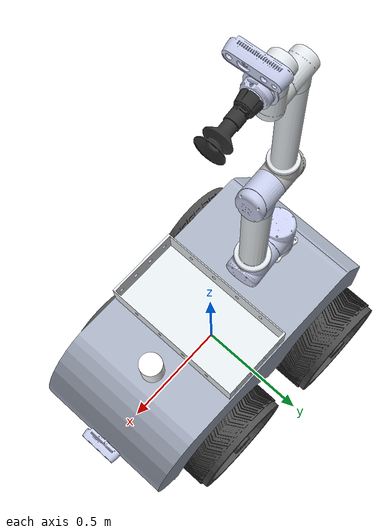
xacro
<?xml version="1.0"?>
<robot
  name="agrobot" xmlns:xacro="http://ros.org/wiki/xacro">
  <!--add
  colors to robot to visualize in gazebo-->
  <xacro:macro name="base_link">
    <visual>
      <material>
        <ambient>1 0 0 1</ambient>
        <diffuse>1 0 0 1</diffuse>
        <specular>0.1 0.1 0.1 1</specular>
        <emissive>0 0 0 0</emissive>
      </material>
    </visual>
  </xacro:macro>
  <xacro:macro name="left_rear_wheel_link">
    <visual>
      <material>
        <ambient>0.5 0.5 0.5 1</ambient>
        <diffuse>0.5 0.5 0.5 1</diffuse>
        <specular>0.1 0.1 0.1 1</specular>
        <emissive>0 0 0 0</emissive>
      </material>
    </visual>
  </xacro:macro>
  <xacro:macro name="right_rear_wheel_link">
    <visual>
      <material>
        <ambient>0.5 0.5 0.5 1</ambient>
        <diffuse>0.5 0.5 0.5 1</diffuse>
        <specular>0.1 0.1 0.1 1</specular>
        <emissive>0 0 0 0</emissive>
      </material>
    </visual>
  </xacro:macro>
  <xacro:macro name="right_front_wheel_link">
    <visual>
      <material>
        <ambient>0.5 0.5 0.5 1</ambient>
        <diffuse>0.5 0.5 0.5 1</diffuse>
        <specular>0.1 0.1 0.1 1</specular>
        <emissive>0 0 0 0</emissive>
      </material>
    </visual>
  </xacro:macro>
  <xacro:macro name="left_front_wheel_link">
    <visual>
      <material>
        <ambient>0.5 0.5 0.5 1</ambient>
        <diffuse>0.5 0.5 0.5 1</diffuse>
        <specular>0.1 0.1 0.1 1</specular>
        <emissive>0 0 0 0</emissive>
      </material>
    </visual>
  </xacro:macro>
  <xacro:macro name="gripper">
    <visual>
      <material>
        <ambient>0 0 0 1</ambient>
        <diffuse>0 0 0 1</diffuse>
        <specular>0.1 0.1 0.1 1</specular>
        <emissive>0 0 0 0</emissive>
      </material>
    </visual>
  </xacro:macro>

  <!-- # Add this before base link -->
  <link name="dummy_link"></link>

  <!-- # Add this after base link -->
  <joint name="dummy_joint" type="fixed">
    <origin rpy="0 0 0" xyz="0 0 0" />
    <parent link="dummy_link" />
    <child link="base_link" />
  </joint>
  <!-- dummy link ends -->

  <link
    name="base_link">
    <inertial>
      <origin
        xyz="0.338619187290064 -0.000162910163891747 0.234771206125617"
        rpy="0 0 0" />
      <mass
        value="90.0457257239936" />
      <inertia
        ixx="4.89388987338462"
        ixy="-0.00136474115893025"
        ixz="-1.05008258735402"
        iyy="9.8227363970549"
        iyz="-0.00408270410883873"
        izz="11.1213786049405" />
    </inertial>
    <visual>
      <origin
        xyz="0 0 0"
        rpy="0 0 0" />
      <geometry>
        <mesh
          filename="package://agrobot/meshes/base_link.STL" />
      </geometry>
      <material
        name="">
        <color
          rgba="0.666666666666667 0.698039215686274 0.768627450980392 1" />
      </material>
    </visual>
    <collision>
      <origin
        xyz="0 0 0"
        rpy="0 0 0" />
      <geometry>
        <mesh
          filename="package://agrobot/meshes/base_link.STL" />
      </geometry>
    </collision>
  </link>
  <link
    name="left_rear_wheel_link">
    <inertial>
      <origin
        xyz="-6.88524348646524E-10 -0.0971549519873335 1.125871895713E-09"
        rpy="0 0 0" />
      <mass
        value="35.6042214737412" />
      <inertia
        ixx="0.708004621980203"
        ixy="1.07770064052363E-09"
        ixz="6.70022802098861E-11"
        iyy="1.27149421818034"
        iyz="-1.75179561332183E-09"
        izz="0.708004621897381" />
    </inertial>
    <visual>
      <origin
        xyz="0 0 0"
        rpy="0 0 0" />
      <geometry>
        <mesh
          filename="package://agrobot/meshes/left_rear_wheel_link.STL" />
      </geometry>
      <material
        name="">
        <color
          rgba="0.298039215686275 0.298039215686275 0.298039215686275 1" />
      </material>
    </visual>
    <collision>
      <origin
        xyz="0 0 0"
        rpy="0 0 0" />
      <geometry>
        <mesh
          filename="package://agrobot/meshes/left_rear_wheel_link.STL" />
      </geometry>
    </collision>
  </link>
  <joint
    name="left_rear_wheel_joint"
    type="continuous">
    <origin
      xyz="-0.377856904248594 0.472821 -0.1457325"
      rpy="0 0 0" />
    <parent
      link="base_link" />
    <child
      link="left_rear_wheel_link" />
    <axis
      xyz="0 1 0" />
    <limit
      effort="1"
      velocity="1" />
  </joint>
  <link
    name="right_rear_wheel_link">
    <inertial>
      <origin
        xyz="7.70649155601433E-10 0.0971550480126593 -1.07134373594775E-09"
        rpy="0 0 0" />
      <mass
        value="35.6042214737478" />
      <inertia
        ixx="0.708004621982386"
        ixy="-1.20553451036157E-09"
        ixz="7.2294183370238E-11"
        iyy="1.27149421820327"
        iyz="1.66639214273336E-09"
        izz="0.7080046219204" />
    </inertial>
    <visual>
      <origin
        xyz="0 0 0"
        rpy="0 0 0" />
      <geometry>
        <mesh
          filename="package://agrobot/meshes/right_rear_wheel_link.STL" />
      </geometry>
      <material
        name="">
        <color
          rgba="0.298039215686275 0.298039215686275 0.298039215686275 1" />
      </material>
    </visual>
    <collision>
      <origin
        xyz="0 0 0"
        rpy="0 0 0" />
      <geometry>
        <mesh
          filename="package://agrobot/meshes/right_rear_wheel_link.STL" />
      </geometry>
    </collision>
  </link>
  <joint
    name="right_rear_wheel_joint"
    type="continuous">
    <origin
      xyz="-0.377856904248594 -0.472820999999999 -0.1457325"
      rpy="0 0 0" />
    <parent
      link="base_link" />
    <child
      link="right_rear_wheel_link" />
    <axis
      xyz="0 -1 0" />
    <limit
      effort="1"
      velocity="1" />
  </joint>
  <link
    name="right_steer_link">
    <inertial>
      <origin
        xyz="0.00106983010521355 -0.058216575717977 0.0586919568981064"
        rpy="0 0 0" />
      <mass
        value="2.02221873415406" />
      <inertia
        ixx="0.0237510071456577"
        ixy="0.000349321803548295"
        ixz="8.49347969022073E-05"
        iyy="0.00474702693466583"
        iyz="-0.00462206016825545"
        izz="0.0198029274091733" />
    </inertial>
    <visual>
      <origin
        xyz="0 0 0"
        rpy="0 0 0" />
      <geometry>
        <mesh
          filename="package://agrobot/meshes/right_steer_link.STL" />
      </geometry>
      <material
        name="">
        <color
          rgba="0.898039215686275 0.917647058823529 0.929411764705882 1" />
      </material>
    </visual>
    <collision>
      <origin
        xyz="0 0 0"
        rpy="0 0 0" />
      <geometry>
        <mesh
          filename="package://agrobot/meshes/right_steer_link.STL" />
      </geometry>
    </collision>
  </link>
  <joint
    name="right_steer_joint"
    type="revolute">
    <origin
      xyz="0.269843095751407 -0.113347500000001 -0.165163500000007"
      rpy="0 0 0" />
    <parent
      link="base_link" />
    <child
      link="right_steer_link" />
    <axis
      xyz="0 0 1" />
    <limit
      lower="-0.5"
      upper="0.5"
      effort="1"
      velocity="1" />
  </joint>
  <link
    name="right_front_wheel_link">
    <inertial>
      <origin
        xyz="-0.00178494838394699 0.0971386499534298 -1.03492078795675E-09"
        rpy="0 0 0" />
      <mass
        value="35.6042214682187" />
      <inertia
        ixx="0.70819481994374"
        ixy="-0.0103507693932998"
        ixz="-1.14535353385098E-10"
        iyy="1.27130402010412"
        iyz="1.61921169599121E-09"
        izz="0.70800462188146" />
    </inertial>
    <visual>
      <origin
        xyz="0 0 0"
        rpy="0 0 0" />
      <geometry>
        <mesh
          filename="package://agrobot/meshes/right_front_wheel_link.STL" />
      </geometry>
      <material
        name="">
        <color
          rgba="0.298039215686275 0.298039215686275 0.298039215686275 1" />
      </material>
    </visual>
    <collision>
      <origin
        xyz="0 0 0"
        rpy="0 0 0" />
      <geometry>
        <mesh
          filename="package://agrobot/meshes/right_front_wheel_link.STL" />
      </geometry>
    </collision>
  </link>
  <joint
    name="right_front_wheel_joint"
    type="continuous">
    <origin
      xyz="0.00600932049673797 -0.327033293258374 0.0194310000000003"
      rpy="0 0 0" />
    <parent
      link="right_steer_link" />
    <child
      link="right_front_wheel_link" />
    <axis
      xyz="0.0183721546209595 -0.999831217723563 0" />
    <limit
      effort="1"
      velocity="1" />
  </joint>
  <link
    name="left_steer_link">
    <inertial>
      <origin
        xyz="-7.93909673002524E-08 0.0582264056008295 0.0586919564086109"
        rpy="0 0 0" />
      <mass
        value="2.0222188316113" />
      <inertia
        ixx="0.0237574260903284"
        ixy="9.05664891630045E-10"
        ixz="-2.90916636093196E-09"
        iyy="0.0047406081835411"
        iyz="0.00462284049826763"
        izz="0.0198029275829883" />
    </inertial>
    <visual>
      <origin
        xyz="0 0 0"
        rpy="0 0 0" />
      <geometry>
        <mesh
          filename="package://agrobot/meshes/left_steer_link.STL" />
      </geometry>
      <material
        name="">
        <color
          rgba="0.898039215686275 0.917647058823529 0.929411764705882 1" />
      </material>
    </visual>
    <collision>
      <origin
        xyz="0 0 0"
        rpy="0 0 0" />
      <geometry>
        <mesh
          filename="package://agrobot/meshes/left_steer_link.STL" />
      </geometry>
    </collision>
  </link>
  <joint
    name="left_steer_joint"
    type="revolute">
    <origin
      xyz="0.269843095751406 0.1133475 -0.1651635"
      rpy="0 0 0" />
    <parent
      link="base_link" />
    <child
      link="left_steer_link" />
    <axis
      xyz="0 0 -1" />
    <limit
      lower="-0.5"
      upper="0.5"
      effort="1"
      velocity="1" />
  </joint>
  <link
    name="left_front_wheel_link">
    <inertial>
      <origin
        xyz="-9.18307208053193E-10 -0.0971549519880449 9.47844053245106E-10"
        rpy="0 0 0" />
      <mass
        value="35.6042214743438" />
      <inertia
        ixx="0.70800462196026"
        ixy="1.43513145970104E-09"
        ixz="7.81085571079474E-11"
        iyy="1.27149421820327"
        iyz="-1.47327217429804E-09"
        izz="0.708004621942521" />
    </inertial>
    <visual>
      <origin
        xyz="0 0 0"
        rpy="0 0 0" />
      <geometry>
        <mesh
          filename="package://agrobot/meshes/left_front_wheel_link.STL" />
      </geometry>
      <material
        name="">
        <color
          rgba="0.298039215686275 0.298039215686275 0.298039215686275 1" />
      </material>
    </visual>
    <collision>
      <origin
        xyz="0 0 0"
        rpy="0 0 0" />
      <geometry>
        <mesh
          filename="package://agrobot/meshes/left_front_wheel_link.STL" />
      </geometry>
    </collision>
  </link>
  <joint
    name="left_front_wheel_joint"
    type="continuous">
    <origin
      xyz="0 0.3270885 0.0194310000000001"
      rpy="0 0 0" />
    <parent
      link="left_steer_link" />
    <child
      link="left_front_wheel_link" />
    <axis
      xyz="0 1 0" />
    <limit
      effort="1"
      velocity="1" />
  </joint>
  <link
    name="lidar_link">
    <inertial>
      <origin
        xyz="-5.55111512312578E-17 0 -5.55111512312578E-17"
        rpy="0 0 0" />
      <mass
        value="0.87856337260668" />
      <inertia
        ixx="0.00145328733893972"
        ixy="3.061917552346E-36"
        ixz="5.14974347887166E-20"
        iyy="0.00145328733893972"
        iyz="-2.34952547281483E-36"
        izz="0.0010776550138266" />
    </inertial>
    <visual>
      <origin
        xyz="0 0 0"
        rpy="0 0 0" />
      <geometry>
        <mesh
          filename="package://agrobot/meshes/lidar_link.STL" />
      </geometry>
      <material
        name="">
        <color
          rgba="1 1 1 1" />
      </material>
    </visual>
    <collision>
      <origin
        xyz="0 0 0"
        rpy="0 0 0" />
      <geometry>
        <mesh
          filename="package://agrobot/meshes/lidar_link.STL" />
      </geometry>
    </collision>
  </link>
  <joint
    name="lidar_joint"
    type="fixed">
    <origin
      xyz="0.3556 0.00635000000000025 0.476885"
      rpy="0 0 0" />
    <parent
      link="base_link" />
    <child
      link="lidar_link" />
    <axis
      xyz="0 0 0" />
  </joint>
  <link
    name="0">
    <inertial>
      <origin
        xyz="7.22391839399344E-06 -0.000475137384474633 0.00243497864398173"
        rpy="0 0 0" />
      <mass
        value="1.91435201606526" />
      <inertia
        ixx="0.00312084570629236"
        ixy="1.03835097418113E-07"
        ixz="2.20016415047805E-07"
        iyy="0.00309492725703448"
        iyz="5.55031448921244E-07"
        izz="0.00574920281992534" />
    </inertial>
    <visual>
      <origin
        xyz="0 0 0"
        rpy="0 0 0" />
      <geometry>
        <mesh
          filename="package://agrobot/meshes/0.STL" />
      </geometry>
      <material
        name="">
        <color
          rgba="0.898039215686275 0.917647058823529 0.929411764705882 1" />
      </material>
    </visual>
    <collision>
      <origin
        xyz="0 0 0"
        rpy="0 0 0" />
      <geometry>
        <mesh
          filename="package://agrobot/meshes/0.STL" />
      </geometry>
    </collision>
  </link>
  <joint
    name="base_0_joint"
    type="fixed">
    <origin
      xyz="-0.400240654248588 0.00634999999999925 0.437005"
      rpy="0 0 -1.5707963267949" />
    <parent
      link="base_link" />
    <child
      link="0" />
    <axis
      xyz="0 0 0" />
  </joint>
  <link
    name="1">
    <inertial>
      <origin
        xyz="0.000999697019135302 0.0685590146345417 0.0115695327417828"
        rpy="0 0 0" />
      <mass
        value="8.30725771838491" />
      <inertia
        ixx="0.0290070611357098"
        ixy="-0.00024404396574081"
        ixz="-0.000162929495467449"
        iyy="0.0272249526419641"
        iyz="-0.00280761572612354"
        izz="0.0271112300666375" />
    </inertial>
    <visual>
      <origin
        xyz="0 0 0"
        rpy="0 0 0" />
      <geometry>
        <mesh
          filename="package://agrobot/meshes/1.STL" />
      </geometry>
      <material
        name="">
        <color
          rgba="0.792156862745098 0.819607843137255 0.933333333333333 1" />
      </material>
    </visual>
    <collision>
      <origin
        xyz="0 0 0"
        rpy="0 0 0" />
      <geometry>
        <mesh
          filename="package://agrobot/meshes/1.STL" />
      </geometry>
    </collision>
  </link>
  <joint
    name="0_1_joint"
    type="revolute">
    <origin
      xyz="0 0 0.032"
      rpy="1.5707963267949 0 -3.14159265358979" />
    <parent
      link="0" />
    <child
      link="1" />
    <axis
      xyz="0 1 0" />
    <limit
      lower="-3.14"
      upper="3.14"
      effort="0"
      velocity="0" />
  </joint>
  <link
    name="2">
    <inertial>
      <origin
        xyz="0.00595545411585895 0.0116126506445609 0.0682998582790035"
        rpy="0 0 0" />
      <mass
        value="8.30725987080827" />
      <inertia
        ixx="0.0290073727643984"
        ixy="-0.000247850514976997"
        ixz="-0.000155662685748835"
        iyy="0.0270973353687768"
        iyz="-0.0028072856850568"
        izz="0.0272385496576121" />
    </inertial>
    <visual>
      <origin
        xyz="0 0 0"
        rpy="0 0 0" />
      <geometry>
        <mesh
          filename="package://agrobot/meshes/2.STL" />
      </geometry>
      <material
        name="">
        <color
          rgba="0.792156862745098 0.819607843137255 0.933333333333333 1" />
      </material>
    </visual>
    <collision>
      <origin
        xyz="0 0 0"
        rpy="0 0 0" />
      <geometry>
        <mesh
          filename="package://agrobot/meshes/2.STL" />
      </geometry>
    </collision>
  </link>
  <joint
    name="1_2_joint"
    type="revolute">
    <origin
      xyz="0.00832831562652692 0.0800000000000003 0.0956380633368556"
      rpy="0 0 0" />
    <parent
      link="1" />
    <child
      link="2" />
    <axis
      xyz="0.0867532877763207 0 0.996229826425609" />
    <limit
      lower="-1.65"
      upper="1.65"
      effort="0"
      velocity="0" />
  </joint>
  <link
    name="3">
    <inertial>
      <origin
        xyz="-1.04083408558608E-17 -0.00416892922889589 1.81521464526213E-14"
        rpy="0 0 0" />
      <mass
        value="11.5994106381345" />
      <inertia
        ixx="0.221390635324574"
        ixy="-2.39691037070085E-16"
        ixz="7.42441146677217E-20"
        iyy="0.0175271612190965"
        iyz="4.69546109641302E-16"
        izz="0.221390635324574" />
    </inertial>
    <visual>
      <origin
        xyz="0 0 0"
        rpy="0 0 0" />
      <geometry>
        <mesh
          filename="package://agrobot/meshes/3.STL" />
      </geometry>
      <material
        name="">
        <color
          rgba="0.894117647058823 0.913725490196078 0.929411764705882 1" />
      </material>
    </visual>
    <collision>
      <origin
        xyz="0 0 0"
        rpy="0 0 0" />
      <geometry>
        <mesh
          filename="package://agrobot/meshes/3.STL" />
      </geometry>
    </collision>
  </link>
  <joint
    name="2_3_joint"
    type="fixed">
    <origin
      xyz="0.00694026302210598 0.317100126418792 0.0796983861140481"
      rpy="0 0 0" />
    <parent
      link="2" />
    <child
      link="3" />
    <axis
      xyz="0 0 0" />
  </joint>
  <link
    name="4">
    <inertial>
      <origin
        xyz="0.00292499147896346 -0.00991735299883056 0.0492119262227205"
        rpy="0 0 0" />
      <mass
        value="3.60191554356692" />
      <inertia
        ixx="0.00635835791698763"
        ixy="4.82814461029873E-05"
        ixz="3.97588349686826E-05"
        iyy="0.00594652060922831"
        iyz="0.000779864890495734"
        izz="0.00704691386224002" />
    </inertial>
    <visual>
      <origin
        xyz="0 0 0"
        rpy="0 0 0" />
      <geometry>
        <mesh
          filename="package://agrobot/meshes/4.STL" />
      </geometry>
      <material
        name="">
        <color
          rgba="0.792156862745098 0.819607843137255 0.933333333333333 1" />
      </material>
    </visual>
    <collision>
      <origin
        xyz="0 0 0"
        rpy="0 0 0" />
      <geometry>
        <mesh
          filename="package://agrobot/meshes/4.STL" />
      </geometry>
    </collision>
  </link>
  <joint
    name="3_4_joint"
    type="fixed">
    <origin
      xyz="-0.00349503410519483 0.295799873581208 -0.0595976068026529"
      rpy="0 0 0" />
    <parent
      link="3" />
    <child
      link="4" />
    <axis
      xyz="0 0 0" />
  </joint>
  <link
    name="5">
    <inertial>
      <origin
        xyz="-0.0106102317325918 0.00322927553978399 0.0533717831449155"
        rpy="0 0 0" />
      <mass
        value="1.25836102164551" />
      <inertia
        ixx="0.0021651395517649"
        ixy="1.7580597700485E-05"
        ixz="0.000287682464723543"
        iyy="0.00231988477711238"
        iyz="7.29731063713995E-06"
        izz="0.00248748931679315" />
    </inertial>
    <visual>
      <origin
        xyz="0 0 0"
        rpy="0 0 0" />
      <geometry>
        <mesh
          filename="package://agrobot/meshes/5.STL" />
      </geometry>
      <material
        name="">
        <color
          rgba="0.752941176470588 0.752941176470588 0.752941176470588 1" />
      </material>
    </visual>
    <collision>
      <origin
        xyz="0 0 0"
        rpy="0 0 0" />
      <geometry>
        <mesh
          filename="package://agrobot/meshes/5.STL" />
      </geometry>
    </collision>
  </link>
  <joint
    name="4_5_joint"
    type="revolute">
    <origin
      xyz="-0.000492307428193579 0 -0.00839486644433451"
      rpy="-3.14159265358979 0 -1.57079632679491" />
    <parent
      link="4" />
    <child
      link="5" />
    <axis
      xyz="0 0.0585432848441399 0.998284871066199" />
    <limit
      lower="-2.90"
      upper="2.90"
      effort="0"
      velocity="0" />
  </joint>
  <link
    name="6">
    <inertial>
      <origin
        xyz="0.00280196613202777 -2.68941073776983E-05 1.57717442811345E-06"
        rpy="0 0 0" />
      <mass
        value="7.18112295808518" />
      <inertia
        ixx="0.0068644718242191"
        ixy="0.00117511571246506"
        ixz="-6.89133291248891E-05"
        iyy="0.12928277854405"
        iyz="6.61450704935139E-07"
        izz="0.129294018865426" />
    </inertial>
    <visual>
      <origin
        xyz="0 0 0"
        rpy="0 0 0" />
      <geometry>
        <mesh
          filename="package://agrobot/meshes/6.STL" />
      </geometry>
      <material
        name="">
        <color
          rgba="0.894117647058823 0.913725490196078 0.929411764705882 1" />
      </material>
    </visual>
    <collision>
      <origin
        xyz="0 0 0"
        rpy="0 0 0" />
      <geometry>
        <mesh
          filename="package://agrobot/meshes/6.STL" />
      </geometry>
    </collision>
  </link>
  <joint
    name="5_6_joint"
    type="fixed">
    <origin
      xyz="-0.291837593948312 0.00629617845121455 0.059433336867193"
      rpy="0 0 0" />
    <parent
      link="5" />
    <child
      link="6" />
    <axis
      xyz="0 0 0" />
  </joint>
  <link
    name="7">
    <inertial>
      <origin
        xyz="-0.0464121119843353 0.000203010500011345 0.00966279069116105"
        rpy="0 0 0" />
      <mass
        value="0.728981385244412" />
      <inertia
        ixx="0.000910110083796708"
        ixy="6.94824779264048E-06"
        ixz="0.000119887081631299"
        iyy="0.000986344964828748"
        iyz="-6.12688333886314E-06"
        izz="0.000877608438305994" />
    </inertial>
    <visual>
      <origin
        xyz="0 0 0"
        rpy="0 0 0" />
      <geometry>
        <mesh
          filename="package://agrobot/meshes/7.STL" />
      </geometry>
      <material
        name="">
        <color
          rgba="0.894117647058823 0.913725490196078 0.929411764705882 1" />
      </material>
    </visual>
    <collision>
      <origin
        xyz="0 0 0"
        rpy="0 0 0" />
      <geometry>
        <mesh
          filename="package://agrobot/meshes/7.STL" />
      </geometry>
    </collision>
  </link>
  <joint
    name="6_7_joint"
    type="fixed">
    <origin
      xyz="-0.225738911568433 0.0021667094607711 -0.000127064220658946"
      rpy="3.14159265358979 0 0" />
    <parent
      link="6" />
    <child
      link="7" />
    <axis
      xyz="0 0 0" />
  </joint>
  <link
    name="8">
    <inertial>
      <origin
        xyz="0.00315312409775961 -0.047401181838342 0.00966077510150698"
        rpy="0 0 0" />
      <mass
        value="0.728996819970243" />
      <inertia
        ixx="0.000986248578286713"
        ixy="5.82280818823239E-06"
        ixz="-8.3317825035149E-06"
        iyy="0.000910566401822428"
        iyz="0.000119792176007718"
        izz="0.000877240479552543" />
    </inertial>
    <visual>
      <origin
        xyz="0 0 0"
        rpy="0 0 0" />
      <geometry>
        <mesh
          filename="package://agrobot/meshes/8.STL" />
      </geometry>
      <material
        name="">
        <color
          rgba="0.894117647058823 0.913725490196078 0.929411764705882 1" />
      </material>
    </visual>
    <collision>
      <origin
        xyz="0 0 0"
        rpy="0 0 0" />
      <geometry>
        <mesh
          filename="package://agrobot/meshes/8.STL" />
      </geometry>
    </collision>
  </link>
  <joint
    name="7_8_joint"
    type="revolute">
    <origin
      xyz="-0.0540016060931738 0.00345562761776773 0.060506513291135"
      rpy="-1.5707963267949 0 1.5707963267949" />
    <parent
      link="7" />
    <child
      link="8" />
    <axis
      xyz="-0.0655690232318667 0.997848033826643 -6.76810218960656E-05" />
    <limit
      lower="-3.14"
      upper="3.14"
      effort="0"
      velocity="0" />
  </joint>
  <link
    name="9">
    <inertial>
      <origin
        xyz="0.00124689136429368 0.0466116090791986 0.00958696238668483"
        rpy="0 0 0" />
      <mass
        value="0.728978116270464" />
      <inertia
        ixx="0.000985386694798776"
        ixy="-1.24938780935602E-05"
        ixz="-1.18699355552977E-05"
        iyy="0.000910144612831302"
        iyz="-0.000119429080856919"
        izz="0.000878519013700961" />
    </inertial>
    <visual>
      <origin
        xyz="0 0 0"
        rpy="0 0 0" />
      <geometry>
        <mesh
          filename="package://agrobot/meshes/9.STL" />
      </geometry>
      <material
        name="">
        <color
          rgba="0.894117647058823 0.913725490196078 0.929411764705882 1" />
      </material>
    </visual>
    <collision>
      <origin
        xyz="0 0 0"
        rpy="0 0 0" />
      <geometry>
        <mesh
          filename="package://agrobot/meshes/9.STL" />
      </geometry>
    </collision>
  </link>
  <joint
    name="8_9_joint"
    type="revolute">
    <origin
      xyz="0.00393333875613289 -0.0549496396746462 0.0615028863029619"
      rpy="1.5707963267949 0 0" />
    <parent
      link="8" />
    <child
      link="9" />
    <axis
      xyz="-0.00521812277108888 -0.999986301161722 0.000410711144438554" />
    <limit
      lower="-3.14"
      upper="3.14"
      effort="0"
      velocity="0" />
  </joint>
  <link
    name="10">
    <inertial>
      <origin
        xyz="0.000110377953812441 -0.000861757182314848 -0.013713304265725"
        rpy="0 0 0" />
      <mass
        value="0.430679885908856" />
      <inertia
        ixx="0.000222454433732095"
        ixy="-5.35332309294992E-06"
        ixz="2.29240029064471E-06"
        iyy="0.000234958685531562"
        iyz="1.31785780318959E-06"
        izz="0.000403266492681117" />
    </inertial>
    <visual>
      <origin
        xyz="0 0 0"
        rpy="0 0 0" />
      <geometry>
        <mesh
          filename="package://agrobot/meshes/10.STL" />
      </geometry>
      <material
        name="">
        <color
          rgba="0.792156862745098 0.819607843137255 0.933333333333333 1" />
      </material>
    </visual>
    <collision>
      <origin
        xyz="0 0 0"
        rpy="0 0 0" />
      <geometry>
        <mesh
          filename="package://agrobot/meshes/10.STL" />
      </geometry>
    </collision>
  </link>
  <joint
    name="9_10_joint"
    type="revolute">
    <origin
      xyz="0.00933464283060605 0.0541881605289505 0.0879633457851359"
      rpy="0 0.0872664625997166 0" />
    <parent
      link="9" />
    <child
      link="10" />
    <axis
      xyz="-0.0152507043027664 0.000125460644613228 -0.999883693375333" />
    <limit
      lower="-3.14"
      upper="3.14"
      effort="0"
      velocity="0" />
  </joint>
  <link
    name="gripper">
    <inertial>
      <origin
        xyz="0.0638506339489031 0.00656885271032123 -8.05301245021539E-06"
        rpy="0 0 0" />
      <mass
        value="0.296980282431166" />
      <inertia
        ixx="0.000180646813372541"
        ixy="-7.06233900050708E-05"
        ixz="8.6579990876807E-08"
        iyy="0.000859855480499732"
        iyz="8.90712406615091E-09"
        izz="0.000867121092394948" />
    </inertial>
    <visual>
      <origin
        xyz="0 0 0"
        rpy="0 0 0" />
      <geometry>
        <mesh
          filename="package://agrobot/meshes/gripper.STL" />
      </geometry>
      <material
        name="">
        <color
          rgba="0.2 0.2 0.2 1" />
      </material>
    </visual>
    <collision>
      <origin
        xyz="0 0 0"
        rpy="0 0 0" />
      <geometry>
        <mesh
          filename="package://agrobot/meshes/gripper.STL" />
      </geometry>
    </collision>
  </link>
  <joint
    name="gripper_joint"
    type="continuous">
    <origin
      xyz="5.71901411399595E-05 0 0.00374956385014949"
      rpy="1.57079632679489 -1.48352986419518 3.14159265358979" />
    <parent
      link="10" />
    <child
      link="gripper" />
    <axis
      xyz="0.994749647587966 0.102338276725984 -0.000125460644611053" />
  </joint>
  <link
    name="camera1">
    <inertial>
      <origin
        xyz="0.022177766274157 0.00336995906468324 0.129258567218364"
        rpy="0 0 0" />
      <mass
        value="0.372606994219054" />
      <inertia
        ixx="0.00112021866595854"
        ixy="1.71233564433347E-05"
        ixz="-4.97046817386124E-05"
        iyy="0.000383612391953193"
        iyz="1.61899853344199E-05"
        izz="0.000894061652523148" />
    </inertial>
    <visual>
      <origin
        xyz="0 0 0"
        rpy="0 0 0" />
      <geometry>
        <mesh
          filename="package://agrobot/meshes/camera1.STL" />
      </geometry>
      <material
        name="">
        <color
          rgba="0.792156862745098 0.819607843137255 0.933333333333333 1" />
      </material>
    </visual>
    <collision>
      <origin
        xyz="0 0 0"
        rpy="0 0 0" />
      <geometry>
        <mesh
          filename="package://agrobot/meshes/camera1.STL" />
      </geometry>
    </collision>
  </link>
  <joint
    name="9_to_camera_joint"
    type="fixed">
    <origin
      xyz="0.00596351407325493 0.054192293332445 0.0551952628094936"
      rpy="-1.5707963267949 -1.48352986419518 0" />
    <parent
      link="9" />
    <child
      link="camera1" />
    <axis
      xyz="0.999883693375333 0.0152507043027703 -0.000125460644611053" />
  </joint>
  <link
    name="box">
    <inertial>
      <origin
        xyz="-3.48038049730048E-05 2.54782625984356E-16 0.0202301146412345"
        rpy="0 0 0" />
      <mass
        value="7.72060620410743" />
      <inertia
        ixx="0.374813962548035"
        ixy="5.18084794476217E-17"
        ixz="8.21432606256597E-06"
        iyy="0.108114101901683"
        iyz="-2.25702668194321E-17"
        izz="0.465535662550645" />
    </inertial>
    <visual>
      <origin
        xyz="0 0 0"
        rpy="0 0 0" />
      <geometry>
        <mesh
          filename="package://agrobot/meshes/box.STL" />
      </geometry>
      <material
        name="">
        <color
          rgba="0.898039215686275 0.917647058823529 0.929411764705882 1" />
      </material>
    </visual>
    <collision>
      <origin
        xyz="0 0 0"
        rpy="0 0 0" />
      <geometry>
        <mesh
          filename="package://agrobot/meshes/box.STL" />
      </geometry>
    </collision>
  </link>
  <joint
    name="base_box"
    type="fixed">
    <origin
      xyz="0.0696593457514061 0 0.428625"
      rpy="0 0 0" />
    <parent
      link="base_link" />
    <child
      link="box" />
    <axis
      xyz="0 0 0" />
  </joint>
  <link
    name="back_right_rod">
    <inertial>
      <origin
        xyz="0 -0.154946853706112 0"
        rpy="0 0 0" />
      <mass
        value="0.692343632758655" />
      <inertia
        ixx="0.00551899047474228"
        ixy="-1.91978532357076E-20"
        ixz="-1.31993210345085E-22"
        iyy="9.29561669777746E-05"
        iyz="-4.25454738859189E-20"
        izz="0.00551899047474228" />
    </inertial>
    <visual>
      <origin
        xyz="0 0 0"
        rpy="0 0 0" />
      <geometry>
        <mesh
          filename="package://agrobot/meshes/back_right_rod.STL" />
      </geometry>
      <material
        name="">
        <color
          rgba="0.898039215686275 0.917647058823529 0.929411764705882 1" />
      </material>
    </visual>
    <collision>
      <origin
        xyz="0 0 0"
        rpy="0 0 0" />
      <geometry>
        <mesh
          filename="package://agrobot/meshes/back_right_rod.STL" />
      </geometry>
    </collision>
  </link>
  <joint
    name="base_right_rod"
    type="fixed">
    <origin
      xyz="-0.377856904248594 0.472821 -0.1457325"
      rpy="0 0 0" />
    <parent
      link="base_link" />
    <child
      link="back_right_rod" />
    <axis
      xyz="0 0 0" />
  </joint>
  <link
    name="back_left_rod">
    <inertial>
      <origin
        xyz="5.55111512312578E-17 0.154946853706112 2.77555756156289E-17"
        rpy="0 0 0" />
      <mass
        value="0.692343632758655" />
      <inertia
        ixx="0.00551899047474228"
        ixy="4.71784432949704E-21"
        ixz="-4.57812218930376E-21"
        iyy="9.29561669777746E-05"
        iyz="-5.0266866172564E-19"
        izz="0.00551899047474228" />
    </inertial>
    <visual>
      <origin
        xyz="0 0 0"
        rpy="0 0 0" />
      <geometry>
        <mesh
          filename="package://agrobot/meshes/back_left_rod.STL" />
      </geometry>
      <material
        name="">
        <color
          rgba="0.898039215686275 0.917647058823529 0.929411764705882 1" />
      </material>
    </visual>
    <collision>
      <origin
        xyz="0 0 0"
        rpy="0 0 0" />
      <geometry>
        <mesh
          filename="package://agrobot/meshes/back_left_rod.STL" />
      </geometry>
    </collision>
  </link>
  <joint
    name="base_backleft_rod_joint"
    type="fixed">
    <origin
      xyz="-0.377856904248594 -0.472821 -0.1457325"
      rpy="0 0 0" />
    <parent
      link="base_link" />
    <child
      link="back_left_rod" />
    <axis
      xyz="0 0 0" />
  </joint>
  <link
    name="camera2">
    <inertial>
      <origin
        xyz="0.0180083766960972 -0.00123519538517971 0.130299495581829"
        rpy="0 0 0" />
      <mass
        value="0.372605182145673" />
      <inertia
        ixx="0.00112475848024442"
        ixy="7.49631241833055E-06"
        ixz="-3.82036485678764E-05"
        iyy="0.000382704445355383"
        iyz="4.21798636586281E-07"
        izz="0.000890427027773502" />
    </inertial>
    <visual>
      <origin
        xyz="0 0 0"
        rpy="0 0 0" />
      <geometry>
        <mesh
          filename="package://agrobot/meshes/camera2.STL" />
      </geometry>
      <material
        name="">
        <color
          rgba="0.792156862745098 0.819607843137255 0.933333333333333 1" />
      </material>
    </visual>
    <collision>
      <origin
        xyz="0 0 0"
        rpy="0 0 0" />
      <geometry>
        <mesh
          filename="package://agrobot/meshes/camera2.STL" />
      </geometry>
    </collision>
  </link>
  <joint
    name="basr_to_camera2_joint"
    type="fixed">
    <origin
      xyz="0.689300980496933 0.0337283352867759 0.132346593602987"
      rpy="0 0 0" />
    <parent
      link="base_link" />
    <child
      link="camera2" />
    <axis
      xyz="0 0 0" />
  </joint>
  <!-- colors starts -->
  <gazebo reference="base_link">
    <xacro:base_link />
  </gazebo>
  <gazebo reference="left_rear_wheel_link">
    <xacro:left_rear_wheel_link />
  </gazebo>
  <gazebo reference="right_rear_wheel_link">
    <xacro:right_rear_wheel_link />
  </gazebo>
  <gazebo reference="right_front_wheel_link">
    <xacro:right_front_wheel_link />
  </gazebo>
  <gazebo reference="left_front_wheel_link">
    <xacro:left_front_wheel_link />
  </gazebo>
  <gazebo reference="gripper">
    <xacro:gripper />
  </gazebo>
  <!-- colors ends here -->
  <!-- controller for joints start -->
  <ros2_control name="GazeboSystem" type="system">
    <hardware>
      <plugin>gazebo_ros2_control/GazeboSystem</plugin>
    </hardware>
    <!-- Velocity Controllers -->
    <joint
      name="left_rear_wheel_joint">
      <command_interface name="velocity">
        <param name="min">-1000.0</param>
        <param name="max">1000.0</param>
      </command_interface>
      <state_interface name="position" />
      <state_interface name="velocity" />
    </joint>
    <joint
      name="right_rear_wheel_joint">
      <command_interface name="velocity">
        <param name="min">-1000.0</param>
        <param name="max">1000.0</param>
      </command_interface>
      <state_interface name="position" />
      <state_interface name="velocity" />
    </joint>
    <joint name="left_front_wheel_joint">
      <command_interface name="velocity">
        <param name="min">-1000.0</param>
        <param name="max">1000.0</param>
      </command_interface>
      <state_interface name="position" />
      <state_interface name="velocity" />
    </joint>
    <joint
      name="right_front_wheel_joint">
      <command_interface name="velocity">
        <param name="min">-1000.0</param>
        <param name="max">1000.0</param>
      </command_interface>
      <state_interface name="position" />
      <state_interface name="velocity" />
    </joint>
    <joint
      name="0_1_joint">
      <command_interface name="velocity">
        <param name="min">-1000.0</param>
        <param name="max">1000.0</param>
      </command_interface>
      <state_interface name="position" />
      <state_interface name="velocity" />
    </joint>
    <joint
      name="1_2_joint">
      <command_interface name="velocity">
        <param name="min">-1000.0</param>
        <param name="max">1000.0</param>
      </command_interface>
      <state_interface name="position" />
      <state_interface name="velocity" />
    </joint>
    <joint
      name="4_5_joint">
      <command_interface name="velocity">
        <param name="min">-1000.0</param>
        <param name="max">1000.0</param>
      </command_interface>
      <state_interface name="position" />
      <state_interface name="velocity" />
    </joint>
    <joint
      name="7_8_joint">
      <command_interface name="velocity">
        <param name="min">-1000.0</param>
        <param name="max">1000.0</param>
      </command_interface>
      <state_interface name="position" />
      <state_interface name="velocity" />
    </joint>
    <joint
      name="8_9_joint">
      <command_interface name="velocity">
        <param name="min">-1000.0</param>
        <param name="max">1000.0</param>
      </command_interface>
      <state_interface name="position" />
      <state_interface name="velocity" />
    </joint>
    <joint
      name="9_10_joint">
      <command_interface name="velocity">
        <param name="min">-1000.0</param>
        <param name="max">1000.0</param>
      </command_interface>
      <state_interface name="position" />
      <state_interface name="velocity" />
    </joint>
    <joint
      name="gripper_joint">
      <command_interface name="velocity">
        <param name="min">-1000.0</param>
        <param name="max">1000.0</param>
      </command_interface>
      <state_interface name="position" />
      <state_interface name="velocity" />
    </joint>
    <!-- velocity controller ends -->

    <!-- Position Controller starts -->
    <joint
      name="left_steer_joint">
      <command_interface name="position">
        <param name="min">-3.14</param>
        <param name="max">3.14</param>
      </command_interface>
      <state_interface name="position" />
      <state_interface name="velocity" />
    </joint>
    <joint
      name="right_steer_joint">
      <command_interface name="position">
        <param name="min">-3.14</param>
        <param name="max">3.14</param>
      </command_interface>
      <state_interface name="position" />
      <state_interface name="velocity" />
    </joint>
    <joint
      name="0_1_joint">
      <command_interface name="position">
        <param name="min">-6.28319</param>
        <param name="max">6.28319</param>
      </command_interface>
      <state_interface name="position" />
      <state_interface name="velocity" />
    </joint>

    <joint
      name="1_2_joint">
      <command_interface name="position">
        <param name="min">-1.57</param>
        <param name="max">1.57</param>
      </command_interface>
      <state_interface name="position" />
      <state_interface name="velocity" />
    </joint>

    <joint
      name="4_5_joint">
      <command_interface name="position">
        <param name="min">-3.14</param>
        <param name="max">3.14</param>
      </command_interface>
      <state_interface name="position" />
      <state_interface name="velocity" />
    </joint>

    <joint
      name="7_8_joint">
      <command_interface name="position">
        <param name="min">-6.28</param>
        <param name="max">6.28</param>
      </command_interface>
      <state_interface name="position" />
      <state_interface name="velocity" />
    </joint>

    <joint
      name="8_9_joint">
      <command_interface name="position">
        <param name="min">-6.28</param>
        <param name="max">6.28</param>
      </command_interface>
      <state_interface name="position" />
      <state_interface name="velocity" />
    </joint>

    <joint
      name="9_10_joint">
      <command_interface name="position">
        <param name="min">-6.28</param>
        <param name="max">6.28</param>
      </command_interface>
      <state_interface name="position" />
      <state_interface name="velocity" />
    </joint>
    <joint
      name="gripper_joint">
      <command_interface name="position">
        <param name="min">-3.14</param>
        <param name="max">3.14</param>
      </command_interface>
      <state_interface name="position" />
      <state_interface name="velocity" />
    </joint>
    <!-- Position Controller ends -->
  </ros2_control>
  <!-- gazebo plugin for the controller -->
  <gazebo>
    <plugin filename="libgazebo_ros2_control.so" name="gazebo_ros2_control">
      <parameters>$(find agrobot)/config/control.yaml</parameters>
    </plugin>
  </gazebo>
  <!-- lidar -->
  <gazebo reference="lidar_link">
    <sensor name="lidar" type="ray">
      <pose>0.0 0.0 0.0 0 0 0</pose>
      <always_on>true</always_on>
      <visualize>true</visualize>
      <update_rate>5</update_rate>
      <ray>
        <scan>
          <horizontal>
            <samples>360</samples>
            <resolution>1.00000</resolution>
            <min_angle>0.000000</min_angle>
            <max_angle>6.280000</max_angle>
          </horizontal>
        </scan>
        <range>
          <min>0.120000</min>
          <max>3.5</max>
          <resolution>0.015000</resolution>
        </range>
        <noise>
          <type>gaussian</type>
          <mean>0.0</mean>
          <stddev>0.01</stddev>
        </noise>
      </ray>
      <plugin name="scan" filename="libgazebo_ros_ray_sensor.so">
        <ros>
          <remapping>~/out:=scan</remapping>
        </ros>
        <output_type>sensor_msgs/LaserScan</output_type>
        <frame_name>lidar_link</frame_name>
      </plugin>
    </sensor>
  </gazebo>
  <!-- lidar ends -->
  <!-- IMU -->
  <gazebo reference="base_link">
    <gravity>true</gravity>
    <sensor name="imu_sensor" type="imu">
      <always_on>true</always_on>
      <update_rate>100</update_rate>
      <visualize>true</visualize>
      <topic>__default_topic__</topic>
      <plugin filename="libgazebo_ros_imu_sensor.so" name="imu_plugin">
        <topicName>imu</topicName>
        <bodyName>base_link</bodyName>
        <updateRateHZ>10.0</updateRateHZ>
        <gaussianNoise>0.0</gaussianNoise>
        <xyzOffset>0 0 0</xyzOffset>
        <rpyOffset>0 0 0</rpyOffset>
        <frameName>base_link</frameName>
        <initialOrientationAsReference>false</initialOrientationAsReference>
      </plugin>
      <pose>0 0 0 0 0 0</pose>
    </sensor>
  </gazebo>
  <!-- IMU ends -->
  <!-- gripper plugin starts -->
  <gazebo>
    <plugin name='vaccum_gripper' filename='libgazebo_ros_vacuum_gripper.so'>

      <!-- This part can be commented out if not required -->
      <ros>

        <!-- Add a namespace -->

        <namespace>/</namespace>

        <!-- Remapping service and topic names -->
        <remapping>switch:=custom_switch</remapping>
        <remapping>grasping:=custom_grasping</remapping>
      </ros>

      <!-- Link associated with gripper -->
      <link_name>gripper</link_name>

      <!-- Max distance to attract entities -->
      <max_distance>10.0</max_distance>

      <!-- List of entities to be not attracted by the gripper -->
      <fixed>ground_plane</fixed>
      <fixed>wall</fixed>

    </plugin>
  </gazebo>
  <!-- gripper plugin ends -->
  <!-- depth camera plugin starts -->
  <gazebo reference="camera">
    <sensor name="camera" type="depth">
      <always_on>true</always_on>
      <update_rate>30</update_rate>
      <visualize>true</visualize>
      <camera>
        <horizontal_fov>1.3962634</horizontal_fov>
        <image>
          <width>640</width>
          <height>480</height>
          <format>R8G8B8</format>
        </image>
        <clip>
          <near>0.1</near>
          <far>100</far>
        </clip>
        <noise>
          <type>gaussian</type>
          <mean>0.0</mean>
          <stddev>0.007</stddev>
        </noise>
      </camera>
      <plugin name="camera_plugin" filename="libgazebo_ros_depth_camera.so">
        <alwaysOn>true</alwaysOn>
        <updateRate>0.0</updateRate>
        <cameraName>camera</cameraName>
        <imageTopicName>image_raw</imageTopicName>
        <cameraInfoTopicName>camera_info</cameraInfoTopicName>
        <frameName>camera</frameName>
        <hackBaseline>0.07</hackBaseline>
        <distortionK1>0.0</distortionK1>
        <distortionK2>0.0</distortionK2>
        <distortionK3>0.0</distortionK3>
        <distortionT1>0.0</distortionT1>
        <distortionT2>0.0</distortionT2>
      </plugin>
    </sensor>
  </gazebo>
</robot>
